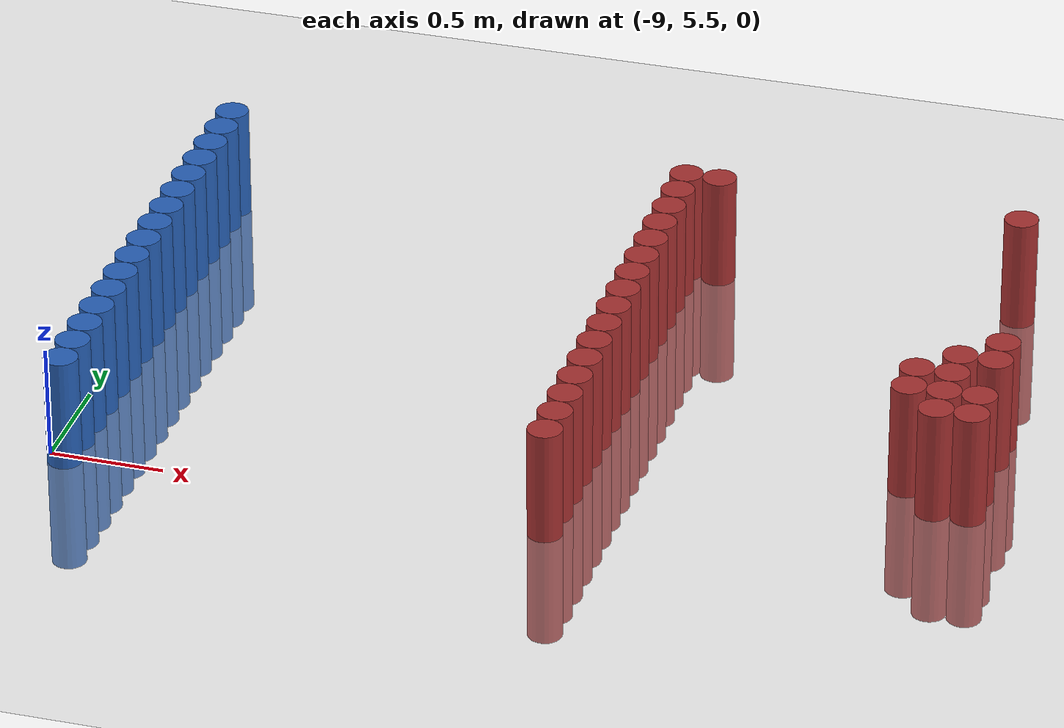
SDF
<sdf version="1.6">
 <world name="default">
  <model name="ground_plane">
   <static>1</static>
   <link name="link">
    <collision name="collision">
     <geometry><plane><normal>0 0 1</normal><size>100 100</size></plane></geometry>
     <surface><friction><ode><mu>100</mu><mu2>50</mu2></ode></friction></surface>
    </collision>
    <visual name="visual">
     <cast_shadows>0</cast_shadows>
     <geometry><plane><normal>0 0 1</normal><size>100 100</size></plane></geometry>
     <material>
      <script><uri>file://media/materials/scripts/gazebo.material</uri><name>Gazebo/Grey</name></script>
     </material>
    </visual>
   </link>
  </model>
  <model name="unit_cylinder_127">
   <static>1</static>
   <pose>-8.925000 5.475000 0.000000 0.000000 0.000000 0.000000</pose>
   <link name="link">
    <inertial>
     <mass>1</mass>
     <inertia><ixx>0.145833</ixx><ixy>0</ixy><ixz>0</ixz><iyy>0.145833</iyy><iyz>0</iyz><izz>0.125</izz></inertia>
    </inertial>
    <collision name="collision">
     <geometry><cylinder><radius>0.075000</radius><length>1</length></cylinder></geometry>
    </collision>
    <visual name="visual">
     <geometry><cylinder><radius>0.075000</radius><length>1</length></cylinder></geometry>
     <material>
      <ambient>0.152000 0.379000 0.720000 1</ambient>
      <diffuse>0.152000 0.379000 0.720000 1</diffuse>
     </material>
     <material>
      <script><name>Gazebo/Grey</name><uri>file://media/materials/scripts/gazebo.material</uri></script>
     </material>
    </visual>
   </link>
  </model>
  <model name="unit_cylinder_128">
   <static>1</static>
   <pose>-8.925000 5.625000 0.000000 0.000000 0.000000 0.000000</pose>
   <link name="link">
    <inertial>
     <mass>1</mass>
     <inertia><ixx>0.145833</ixx><ixy>0</ixy><ixz>0</ixz><iyy>0.145833</iyy><iyz>0</iyz><izz>0.125</izz></inertia>
    </inertial>
    <collision name="collision">
     <geometry><cylinder><radius>0.075000</radius><length>1</length></cylinder></geometry>
    </collision>
    <visual name="visual">
     <geometry><cylinder><radius>0.075000</radius><length>1</length></cylinder></geometry>
     <material>
      <ambient>0.152000 0.379000 0.720000 1</ambient>
      <diffuse>0.152000 0.379000 0.720000 1</diffuse>
     </material>
     <material>
      <script><name>Gazebo/Grey</name><uri>file://media/materials/scripts/gazebo.material</uri></script>
     </material>
    </visual>
   </link>
  </model>
  <model name="unit_cylinder_129">
   <static>1</static>
   <pose>-8.925000 5.775000 0.000000 0.000000 0.000000 0.000000</pose>
   <link name="link">
    <inertial>
     <mass>1</mass>
     <inertia><ixx>0.145833</ixx><ixy>0</ixy><ixz>0</ixz><iyy>0.145833</iyy><iyz>0</iyz><izz>0.125</izz></inertia>
    </inertial>
    <collision name="collision">
     <geometry><cylinder><radius>0.075000</radius><length>1</length></cylinder></geometry>
    </collision>
    <visual name="visual">
     <geometry><cylinder><radius>0.075000</radius><length>1</length></cylinder></geometry>
     <material>
      <ambient>0.152000 0.379000 0.720000 1</ambient>
      <diffuse>0.152000 0.379000 0.720000 1</diffuse>
     </material>
     <material>
      <script><name>Gazebo/Grey</name><uri>file://media/materials/scripts/gazebo.material</uri></script>
     </material>
    </visual>
   </link>
  </model>
  <model name="unit_cylinder_130">
   <static>1</static>
   <pose>-8.925000 5.925000 0.000000 0.000000 0.000000 0.000000</pose>
   <link name="link">
    <inertial>
     <mass>1</mass>
     <inertia><ixx>0.145833</ixx><ixy>0</ixy><ixz>0</ixz><iyy>0.145833</iyy><iyz>0</iyz><izz>0.125</izz></inertia>
    </inertial>
    <collision name="collision">
     <geometry><cylinder><radius>0.075000</radius><length>1</length></cylinder></geometry>
    </collision>
    <visual name="visual">
     <geometry><cylinder><radius>0.075000</radius><length>1</length></cylinder></geometry>
     <material>
      <ambient>0.152000 0.379000 0.720000 1</ambient>
      <diffuse>0.152000 0.379000 0.720000 1</diffuse>
     </material>
     <material>
      <script><name>Gazebo/Grey</name><uri>file://media/materials/scripts/gazebo.material</uri></script>
     </material>
    </visual>
   </link>
  </model>
  <model name="unit_cylinder_131">
   <static>1</static>
   <pose>-8.925000 6.075000 0.000000 0.000000 0.000000 0.000000</pose>
   <link name="link">
    <inertial>
     <mass>1</mass>
     <inertia><ixx>0.145833</ixx><ixy>0</ixy><ixz>0</ixz><iyy>0.145833</iyy><iyz>0</iyz><izz>0.125</izz></inertia>
    </inertial>
    <collision name="collision">
     <geometry><cylinder><radius>0.075000</radius><length>1</length></cylinder></geometry>
    </collision>
    <visual name="visual">
     <geometry><cylinder><radius>0.075000</radius><length>1</length></cylinder></geometry>
     <material>
      <ambient>0.152000 0.379000 0.720000 1</ambient>
      <diffuse>0.152000 0.379000 0.720000 1</diffuse>
     </material>
     <material>
      <script><name>Gazebo/Grey</name><uri>file://media/materials/scripts/gazebo.material</uri></script>
     </material>
    </visual>
   </link>
  </model>
  <model name="unit_cylinder_132">
   <static>1</static>
   <pose>-8.925000 6.225000 0.000000 0.000000 0.000000 0.000000</pose>
   <link name="link">
    <inertial>
     <mass>1</mass>
     <inertia><ixx>0.145833</ixx><ixy>0</ixy><ixz>0</ixz><iyy>0.145833</iyy><iyz>0</iyz><izz>0.125</izz></inertia>
    </inertial>
    <collision name="collision">
     <geometry><cylinder><radius>0.075000</radius><length>1</length></cylinder></geometry>
    </collision>
    <visual name="visual">
     <geometry><cylinder><radius>0.075000</radius><length>1</length></cylinder></geometry>
     <material>
      <ambient>0.152000 0.379000 0.720000 1</ambient>
      <diffuse>0.152000 0.379000 0.720000 1</diffuse>
     </material>
     <material>
      <script><name>Gazebo/Grey</name><uri>file://media/materials/scripts/gazebo.material</uri></script>
     </material>
    </visual>
   </link>
  </model>
  <model name="unit_cylinder_133">
   <static>1</static>
   <pose>-8.925000 6.375000 0.000000 0.000000 0.000000 0.000000</pose>
   <link name="link">
    <inertial>
     <mass>1</mass>
     <inertia><ixx>0.145833</ixx><ixy>0</ixy><ixz>0</ixz><iyy>0.145833</iyy><iyz>0</iyz><izz>0.125</izz></inertia>
    </inertial>
    <collision name="collision">
     <geometry><cylinder><radius>0.075000</radius><length>1</length></cylinder></geometry>
    </collision>
    <visual name="visual">
     <geometry><cylinder><radius>0.075000</radius><length>1</length></cylinder></geometry>
     <material>
      <ambient>0.152000 0.379000 0.720000 1</ambient>
      <diffuse>0.152000 0.379000 0.720000 1</diffuse>
     </material>
     <material>
      <script><name>Gazebo/Grey</name><uri>file://media/materials/scripts/gazebo.material</uri></script>
     </material>
    </visual>
   </link>
  </model>
  <model name="unit_cylinder_134">
   <static>1</static>
   <pose>-8.925000 6.525000 0.000000 0.000000 0.000000 0.000000</pose>
   <link name="link">
    <inertial>
     <mass>1</mass>
     <inertia><ixx>0.145833</ixx><ixy>0</ixy><ixz>0</ixz><iyy>0.145833</iyy><iyz>0</iyz><izz>0.125</izz></inertia>
    </inertial>
    <collision name="collision">
     <geometry><cylinder><radius>0.075000</radius><length>1</length></cylinder></geometry>
    </collision>
    <visual name="visual">
     <geometry><cylinder><radius>0.075000</radius><length>1</length></cylinder></geometry>
     <material>
      <ambient>0.152000 0.379000 0.720000 1</ambient>
      <diffuse>0.152000 0.379000 0.720000 1</diffuse>
     </material>
     <material>
      <script><name>Gazebo/Grey</name><uri>file://media/materials/scripts/gazebo.material</uri></script>
     </material>
    </visual>
   </link>
  </model>
  <model name="unit_cylinder_135">
   <static>1</static>
   <pose>-8.925000 6.675000 0.000000 0.000000 0.000000 0.000000</pose>
   <link name="link">
    <inertial>
     <mass>1</mass>
     <inertia><ixx>0.145833</ixx><ixy>0</ixy><ixz>0</ixz><iyy>0.145833</iyy><iyz>0</iyz><izz>0.125</izz></inertia>
    </inertial>
    <collision name="collision">
     <geometry><cylinder><radius>0.075000</radius><length>1</length></cylinder></geometry>
    </collision>
    <visual name="visual">
     <geometry><cylinder><radius>0.075000</radius><length>1</length></cylinder></geometry>
     <material>
      <ambient>0.152000 0.379000 0.720000 1</ambient>
      <diffuse>0.152000 0.379000 0.720000 1</diffuse>
     </material>
     <material>
      <script><name>Gazebo/Grey</name><uri>file://media/materials/scripts/gazebo.material</uri></script>
     </material>
    </visual>
   </link>
  </model>
  <model name="unit_cylinder_136">
   <static>1</static>
   <pose>-8.925000 6.825000 0.000000 0.000000 0.000000 0.000000</pose>
   <link name="link">
    <inertial>
     <mass>1</mass>
     <inertia><ixx>0.145833</ixx><ixy>0</ixy><ixz>0</ixz><iyy>0.145833</iyy><iyz>0</iyz><izz>0.125</izz></inertia>
    </inertial>
    <collision name="collision">
     <geometry><cylinder><radius>0.075000</radius><length>1</length></cylinder></geometry>
    </collision>
    <visual name="visual">
     <geometry><cylinder><radius>0.075000</radius><length>1</length></cylinder></geometry>
     <material>
      <ambient>0.152000 0.379000 0.720000 1</ambient>
      <diffuse>0.152000 0.379000 0.720000 1</diffuse>
     </material>
     <material>
      <script><name>Gazebo/Grey</name><uri>file://media/materials/scripts/gazebo.material</uri></script>
     </material>
    </visual>
   </link>
  </model>
  <model name="unit_cylinder_137">
   <static>1</static>
   <pose>-8.925000 6.975000 0.000000 0.000000 0.000000 0.000000</pose>
   <link name="link">
    <inertial>
     <mass>1</mass>
     <inertia><ixx>0.145833</ixx><ixy>0</ixy><ixz>0</ixz><iyy>0.145833</iyy><iyz>0</iyz><izz>0.125</izz></inertia>
    </inertial>
    <collision name="collision">
     <geometry><cylinder><radius>0.075000</radius><length>1</length></cylinder></geometry>
    </collision>
    <visual name="visual">
     <geometry><cylinder><radius>0.075000</radius><length>1</length></cylinder></geometry>
     <material>
      <ambient>0.152000 0.379000 0.720000 1</ambient>
      <diffuse>0.152000 0.379000 0.720000 1</diffuse>
     </material>
     <material>
      <script><name>Gazebo/Grey</name><uri>file://media/materials/scripts/gazebo.material</uri></script>
     </material>
    </visual>
   </link>
  </model>
  <model name="unit_cylinder_138">
   <static>1</static>
   <pose>-8.925000 7.125000 0.000000 0.000000 0.000000 0.000000</pose>
   <link name="link">
    <inertial>
     <mass>1</mass>
     <inertia><ixx>0.145833</ixx><ixy>0</ixy><ixz>0</ixz><iyy>0.145833</iyy><iyz>0</iyz><izz>0.125</izz></inertia>
    </inertial>
    <collision name="collision">
     <geometry><cylinder><radius>0.075000</radius><length>1</length></cylinder></geometry>
    </collision>
    <visual name="visual">
     <geometry><cylinder><radius>0.075000</radius><length>1</length></cylinder></geometry>
     <material>
      <ambient>0.152000 0.379000 0.720000 1</ambient>
      <diffuse>0.152000 0.379000 0.720000 1</diffuse>
     </material>
     <material>
      <script><name>Gazebo/Grey</name><uri>file://media/materials/scripts/gazebo.material</uri></script>
     </material>
    </visual>
   </link>
  </model>
  <model name="unit_cylinder_139">
   <static>1</static>
   <pose>-8.925000 7.275000 0.000000 0.000000 0.000000 0.000000</pose>
   <link name="link">
    <inertial>
     <mass>1</mass>
     <inertia><ixx>0.145833</ixx><ixy>0</ixy><ixz>0</ixz><iyy>0.145833</iyy><iyz>0</iyz><izz>0.125</izz></inertia>
    </inertial>
    <collision name="collision">
     <geometry><cylinder><radius>0.075000</radius><length>1</length></cylinder></geometry>
    </collision>
    <visual name="visual">
     <geometry><cylinder><radius>0.075000</radius><length>1</length></cylinder></geometry>
     <material>
      <ambient>0.152000 0.379000 0.720000 1</ambient>
      <diffuse>0.152000 0.379000 0.720000 1</diffuse>
     </material>
     <material>
      <script><name>Gazebo/Grey</name><uri>file://media/materials/scripts/gazebo.material</uri></script>
     </material>
    </visual>
   </link>
  </model>
  <model name="unit_cylinder_140">
   <static>1</static>
   <pose>-8.925000 7.425000 0.000000 0.000000 0.000000 0.000000</pose>
   <link name="link">
    <inertial>
     <mass>1</mass>
     <inertia><ixx>0.145833</ixx><ixy>0</ixy><ixz>0</ixz><iyy>0.145833</iyy><iyz>0</iyz><izz>0.125</izz></inertia>
    </inertial>
    <collision name="collision">
     <geometry><cylinder><radius>0.075000</radius><length>1</length></cylinder></geometry>
    </collision>
    <visual name="visual">
     <geometry><cylinder><radius>0.075000</radius><length>1</length></cylinder></geometry>
     <material>
      <ambient>0.152000 0.379000 0.720000 1</ambient>
      <diffuse>0.152000 0.379000 0.720000 1</diffuse>
     </material>
     <material>
      <script><name>Gazebo/Grey</name><uri>file://media/materials/scripts/gazebo.material</uri></script>
     </material>
    </visual>
   </link>
  </model>
  <model name="unit_cylinder_141">
   <static>1</static>
   <pose>-8.925000 7.575000 0.000000 0.000000 0.000000 0.000000</pose>
   <link name="link">
    <inertial>
     <mass>1</mass>
     <inertia><ixx>0.145833</ixx><ixy>0</ixy><ixz>0</ixz><iyy>0.145833</iyy><iyz>0</iyz><izz>0.125</izz></inertia>
    </inertial>
    <collision name="collision">
     <geometry><cylinder><radius>0.075000</radius><length>1</length></cylinder></geometry>
    </collision>
    <visual name="visual">
     <geometry><cylinder><radius>0.075000</radius><length>1</length></cylinder></geometry>
     <material>
      <ambient>0.152000 0.379000 0.720000 1</ambient>
      <diffuse>0.152000 0.379000 0.720000 1</diffuse>
     </material>
     <material>
      <script><name>Gazebo/Grey</name><uri>file://media/materials/scripts/gazebo.material</uri></script>
     </material>
    </visual>
   </link>
  </model>
  <model name="unit_cylinder_142">
   <static>1</static>
   <pose>-8.925000 7.725000 0.000000 0.000000 0.000000 0.000000</pose>
   <link name="link">
    <inertial>
     <mass>1</mass>
     <inertia><ixx>0.145833</ixx><ixy>0</ixy><ixz>0</ixz><iyy>0.145833</iyy><iyz>0</iyz><izz>0.125</izz></inertia>
    </inertial>
    <collision name="collision">
     <geometry><cylinder><radius>0.075000</radius><length>1</length></cylinder></geometry>
    </collision>
    <visual name="visual">
     <geometry><cylinder><radius>0.075000</radius><length>1</length></cylinder></geometry>
     <material>
      <ambient>0.152000 0.379000 0.720000 1</ambient>
      <diffuse>0.152000 0.379000 0.720000 1</diffuse>
     </material>
     <material>
      <script><name>Gazebo/Grey</name><uri>file://media/materials/scripts/gazebo.material</uri></script>
     </material>
    </visual>
   </link>
  </model>
  <model name="unit_cylinder_183">
   <static>1</static>
   <pose>-6.825000 5.475000 0.000000 0.000000 0.000000 0.000000</pose>
   <link name="link">
    <inertial>
     <mass>1</mass>
     <inertia><ixx>0.145833</ixx><ixy>0</ixy><ixz>0</ixz><iyy>0.145833</iyy><iyz>0</iyz><izz>0.125</izz></inertia>
    </inertial>
    <collision name="collision">
     <geometry><cylinder><radius>0.075000</radius><length>1</length></cylinder></geometry>
    </collision>
    <visual name="visual">
     <geometry><cylinder><radius>0.075000</radius><length>1</length></cylinder></geometry>
     <material>
      <ambient>0.648000 0.192000 0.192000 1</ambient>
      <diffuse>0.648000 0.192000 0.192000 1</diffuse>
     </material>
     <material>
      <script><name>Gazebo/Grey</name><uri>file://media/materials/scripts/gazebo.material</uri></script>
     </material>
    </visual>
   </link>
  </model>
  <model name="unit_cylinder_184">
   <static>1</static>
   <pose>-6.825000 5.625000 0.000000 0.000000 0.000000 0.000000</pose>
   <link name="link">
    <inertial>
     <mass>1</mass>
     <inertia><ixx>0.145833</ixx><ixy>0</ixy><ixz>0</ixz><iyy>0.145833</iyy><iyz>0</iyz><izz>0.125</izz></inertia>
    </inertial>
    <collision name="collision">
     <geometry><cylinder><radius>0.075000</radius><length>1</length></cylinder></geometry>
    </collision>
    <visual name="visual">
     <geometry><cylinder><radius>0.075000</radius><length>1</length></cylinder></geometry>
     <material>
      <ambient>0.648000 0.192000 0.192000 1</ambient>
      <diffuse>0.648000 0.192000 0.192000 1</diffuse>
     </material>
     <material>
      <script><name>Gazebo/Grey</name><uri>file://media/materials/scripts/gazebo.material</uri></script>
     </material>
    </visual>
   </link>
  </model>
  <model name="unit_cylinder_185">
   <static>1</static>
   <pose>-6.825000 5.775000 0.000000 0.000000 0.000000 0.000000</pose>
   <link name="link">
    <inertial>
     <mass>1</mass>
     <inertia><ixx>0.145833</ixx><ixy>0</ixy><ixz>0</ixz><iyy>0.145833</iyy><iyz>0</iyz><izz>0.125</izz></inertia>
    </inertial>
    <collision name="collision">
     <geometry><cylinder><radius>0.075000</radius><length>1</length></cylinder></geometry>
    </collision>
    <visual name="visual">
     <geometry><cylinder><radius>0.075000</radius><length>1</length></cylinder></geometry>
     <material>
      <ambient>0.648000 0.192000 0.192000 1</ambient>
      <diffuse>0.648000 0.192000 0.192000 1</diffuse>
     </material>
     <material>
      <script><name>Gazebo/Grey</name><uri>file://media/materials/scripts/gazebo.material</uri></script>
     </material>
    </visual>
   </link>
  </model>
  <model name="unit_cylinder_186">
   <static>1</static>
   <pose>-6.825000 5.925000 0.000000 0.000000 0.000000 0.000000</pose>
   <link name="link">
    <inertial>
     <mass>1</mass>
     <inertia><ixx>0.145833</ixx><ixy>0</ixy><ixz>0</ixz><iyy>0.145833</iyy><iyz>0</iyz><izz>0.125</izz></inertia>
    </inertial>
    <collision name="collision">
     <geometry><cylinder><radius>0.075000</radius><length>1</length></cylinder></geometry>
    </collision>
    <visual name="visual">
     <geometry><cylinder><radius>0.075000</radius><length>1</length></cylinder></geometry>
     <material>
      <ambient>0.648000 0.192000 0.192000 1</ambient>
      <diffuse>0.648000 0.192000 0.192000 1</diffuse>
     </material>
     <material>
      <script><name>Gazebo/Grey</name><uri>file://media/materials/scripts/gazebo.material</uri></script>
     </material>
    </visual>
   </link>
  </model>
  <model name="unit_cylinder_187">
   <static>1</static>
   <pose>-6.825000 6.075000 0.000000 0.000000 0.000000 0.000000</pose>
   <link name="link">
    <inertial>
     <mass>1</mass>
     <inertia><ixx>0.145833</ixx><ixy>0</ixy><ixz>0</ixz><iyy>0.145833</iyy><iyz>0</iyz><izz>0.125</izz></inertia>
    </inertial>
    <collision name="collision">
     <geometry><cylinder><radius>0.075000</radius><length>1</length></cylinder></geometry>
    </collision>
    <visual name="visual">
     <geometry><cylinder><radius>0.075000</radius><length>1</length></cylinder></geometry>
     <material>
      <ambient>0.648000 0.192000 0.192000 1</ambient>
      <diffuse>0.648000 0.192000 0.192000 1</diffuse>
     </material>
     <material>
      <script><name>Gazebo/Grey</name><uri>file://media/materials/scripts/gazebo.material</uri></script>
     </material>
    </visual>
   </link>
  </model>
  <model name="unit_cylinder_188">
   <static>1</static>
   <pose>-6.825000 6.225000 0.000000 0.000000 0.000000 0.000000</pose>
   <link name="link">
    <inertial>
     <mass>1</mass>
     <inertia><ixx>0.145833</ixx><ixy>0</ixy><ixz>0</ixz><iyy>0.145833</iyy><iyz>0</iyz><izz>0.125</izz></inertia>
    </inertial>
    <collision name="collision">
     <geometry><cylinder><radius>0.075000</radius><length>1</length></cylinder></geometry>
    </collision>
    <visual name="visual">
     <geometry><cylinder><radius>0.075000</radius><length>1</length></cylinder></geometry>
     <material>
      <ambient>0.648000 0.192000 0.192000 1</ambient>
      <diffuse>0.648000 0.192000 0.192000 1</diffuse>
     </material>
     <material>
      <script><name>Gazebo/Grey</name><uri>file://media/materials/scripts/gazebo.material</uri></script>
     </material>
    </visual>
   </link>
  </model>
  <model name="unit_cylinder_189">
   <static>1</static>
   <pose>-6.825000 6.375000 0.000000 0.000000 0.000000 0.000000</pose>
   <link name="link">
    <inertial>
     <mass>1</mass>
     <inertia><ixx>0.145833</ixx><ixy>0</ixy><ixz>0</ixz><iyy>0.145833</iyy><iyz>0</iyz><izz>0.125</izz></inertia>
    </inertial>
    <collision name="collision">
     <geometry><cylinder><radius>0.075000</radius><length>1</length></cylinder></geometry>
    </collision>
    <visual name="visual">
     <geometry><cylinder><radius>0.075000</radius><length>1</length></cylinder></geometry>
     <material>
      <ambient>0.648000 0.192000 0.192000 1</ambient>
      <diffuse>0.648000 0.192000 0.192000 1</diffuse>
     </material>
     <material>
      <script><name>Gazebo/Grey</name><uri>file://media/materials/scripts/gazebo.material</uri></script>
     </material>
    </visual>
   </link>
  </model>
  <model name="unit_cylinder_190">
   <static>1</static>
   <pose>-6.825000 6.525000 0.000000 0.000000 0.000000 0.000000</pose>
   <link name="link">
    <inertial>
     <mass>1</mass>
     <inertia><ixx>0.145833</ixx><ixy>0</ixy><ixz>0</ixz><iyy>0.145833</iyy><iyz>0</iyz><izz>0.125</izz></inertia>
    </inertial>
    <collision name="collision">
     <geometry><cylinder><radius>0.075000</radius><length>1</length></cylinder></geometry>
    </collision>
    <visual name="visual">
     <geometry><cylinder><radius>0.075000</radius><length>1</length></cylinder></geometry>
     <material>
      <ambient>0.648000 0.192000 0.192000 1</ambient>
      <diffuse>0.648000 0.192000 0.192000 1</diffuse>
     </material>
     <material>
      <script><name>Gazebo/Grey</name><uri>file://media/materials/scripts/gazebo.material</uri></script>
     </material>
    </visual>
   </link>
  </model>
  <model name="unit_cylinder_191">
   <static>1</static>
   <pose>-6.825000 6.675000 0.000000 0.000000 0.000000 0.000000</pose>
   <link name="link">
    <inertial>
     <mass>1</mass>
     <inertia><ixx>0.145833</ixx><ixy>0</ixy><ixz>0</ixz><iyy>0.145833</iyy><iyz>0</iyz><izz>0.125</izz></inertia>
    </inertial>
    <collision name="collision">
     <geometry><cylinder><radius>0.075000</radius><length>1</length></cylinder></geometry>
    </collision>
    <visual name="visual">
     <geometry><cylinder><radius>0.075000</radius><length>1</length></cylinder></geometry>
     <material>
      <ambient>0.648000 0.192000 0.192000 1</ambient>
      <diffuse>0.648000 0.192000 0.192000 1</diffuse>
     </material>
     <material>
      <script><name>Gazebo/Grey</name><uri>file://media/materials/scripts/gazebo.material</uri></script>
     </material>
    </visual>
   </link>
  </model>
  <model name="unit_cylinder_192">
   <static>1</static>
   <pose>-6.825000 6.825000 0.000000 0.000000 0.000000 0.000000</pose>
   <link name="link">
    <inertial>
     <mass>1</mass>
     <inertia><ixx>0.145833</ixx><ixy>0</ixy><ixz>0</ixz><iyy>0.145833</iyy><iyz>0</iyz><izz>0.125</izz></inertia>
    </inertial>
    <collision name="collision">
     <geometry><cylinder><radius>0.075000</radius><length>1</length></cylinder></geometry>
    </collision>
    <visual name="visual">
     <geometry><cylinder><radius>0.075000</radius><length>1</length></cylinder></geometry>
     <material>
      <ambient>0.648000 0.192000 0.192000 1</ambient>
      <diffuse>0.648000 0.192000 0.192000 1</diffuse>
     </material>
     <material>
      <script><name>Gazebo/Grey</name><uri>file://media/materials/scripts/gazebo.material</uri></script>
     </material>
    </visual>
   </link>
  </model>
  <model name="unit_cylinder_193">
   <static>1</static>
   <pose>-6.825000 6.975000 0.000000 0.000000 0.000000 0.000000</pose>
   <link name="link">
    <inertial>
     <mass>1</mass>
     <inertia><ixx>0.145833</ixx><ixy>0</ixy><ixz>0</ixz><iyy>0.145833</iyy><iyz>0</iyz><izz>0.125</izz></inertia>
    </inertial>
    <collision name="collision">
     <geometry><cylinder><radius>0.075000</radius><length>1</length></cylinder></geometry>
    </collision>
    <visual name="visual">
     <geometry><cylinder><radius>0.075000</radius><length>1</length></cylinder></geometry>
     <material>
      <ambient>0.648000 0.192000 0.192000 1</ambient>
      <diffuse>0.648000 0.192000 0.192000 1</diffuse>
     </material>
     <material>
      <script><name>Gazebo/Grey</name><uri>file://media/materials/scripts/gazebo.material</uri></script>
     </material>
    </visual>
   </link>
  </model>
  <model name="unit_cylinder_194">
   <static>1</static>
   <pose>-6.825000 7.125000 0.000000 0.000000 0.000000 0.000000</pose>
   <link name="link">
    <inertial>
     <mass>1</mass>
     <inertia><ixx>0.145833</ixx><ixy>0</ixy><ixz>0</ixz><iyy>0.145833</iyy><iyz>0</iyz><izz>0.125</izz></inertia>
    </inertial>
    <collision name="collision">
     <geometry><cylinder><radius>0.075000</radius><length>1</length></cylinder></geometry>
    </collision>
    <visual name="visual">
     <geometry><cylinder><radius>0.075000</radius><length>1</length></cylinder></geometry>
     <material>
      <ambient>0.648000 0.192000 0.192000 1</ambient>
      <diffuse>0.648000 0.192000 0.192000 1</diffuse>
     </material>
     <material>
      <script><name>Gazebo/Grey</name><uri>file://media/materials/scripts/gazebo.material</uri></script>
     </material>
    </visual>
   </link>
  </model>
  <model name="unit_cylinder_195">
   <static>1</static>
   <pose>-6.825000 7.275000 0.000000 0.000000 0.000000 0.000000</pose>
   <link name="link">
    <inertial>
     <mass>1</mass>
     <inertia><ixx>0.145833</ixx><ixy>0</ixy><ixz>0</ixz><iyy>0.145833</iyy><iyz>0</iyz><izz>0.125</izz></inertia>
    </inertial>
    <collision name="collision">
     <geometry><cylinder><radius>0.075000</radius><length>1</length></cylinder></geometry>
    </collision>
    <visual name="visual">
     <geometry><cylinder><radius>0.075000</radius><length>1</length></cylinder></geometry>
     <material>
      <ambient>0.648000 0.192000 0.192000 1</ambient>
      <diffuse>0.648000 0.192000 0.192000 1</diffuse>
     </material>
     <material>
      <script><name>Gazebo/Grey</name><uri>file://media/materials/scripts/gazebo.material</uri></script>
     </material>
    </visual>
   </link>
  </model>
  <model name="unit_cylinder_196">
   <static>1</static>
   <pose>-6.825000 7.425000 0.000000 0.000000 0.000000 0.000000</pose>
   <link name="link">
    <inertial>
     <mass>1</mass>
     <inertia><ixx>0.145833</ixx><ixy>0</ixy><ixz>0</ixz><iyy>0.145833</iyy><iyz>0</iyz><izz>0.125</izz></inertia>
    </inertial>
    <collision name="collision">
     <geometry><cylinder><radius>0.075000</radius><length>1</length></cylinder></geometry>
    </collision>
    <visual name="visual">
     <geometry><cylinder><radius>0.075000</radius><length>1</length></cylinder></geometry>
     <material>
      <ambient>0.648000 0.192000 0.192000 1</ambient>
      <diffuse>0.648000 0.192000 0.192000 1</diffuse>
     </material>
     <material>
      <script><name>Gazebo/Grey</name><uri>file://media/materials/scripts/gazebo.material</uri></script>
     </material>
    </visual>
   </link>
  </model>
  <model name="unit_cylinder_197">
   <static>1</static>
   <pose>-6.825000 7.575000 0.000000 0.000000 0.000000 0.000000</pose>
   <link name="link">
    <inertial>
     <mass>1</mass>
     <inertia><ixx>0.145833</ixx><ixy>0</ixy><ixz>0</ixz><iyy>0.145833</iyy><iyz>0</iyz><izz>0.125</izz></inertia>
    </inertial>
    <collision name="collision">
     <geometry><cylinder><radius>0.075000</radius><length>1</length></cylinder></geometry>
    </collision>
    <visual name="visual">
     <geometry><cylinder><radius>0.075000</radius><length>1</length></cylinder></geometry>
     <material>
      <ambient>0.648000 0.192000 0.192000 1</ambient>
      <diffuse>0.648000 0.192000 0.192000 1</diffuse>
     </material>
     <material>
      <script><name>Gazebo/Grey</name><uri>file://media/materials/scripts/gazebo.material</uri></script>
     </material>
    </visual>
   </link>
  </model>
  <model name="unit_cylinder_198">
   <static>1</static>
   <pose>-6.825000 7.725000 0.000000 0.000000 0.000000 0.000000</pose>
   <link name="link">
    <inertial>
     <mass>1</mass>
     <inertia><ixx>0.145833</ixx><ixy>0</ixy><ixz>0</ixz><iyy>0.145833</iyy><iyz>0</iyz><izz>0.125</izz></inertia>
    </inertial>
    <collision name="collision">
     <geometry><cylinder><radius>0.075000</radius><length>1</length></cylinder></geometry>
    </collision>
    <visual name="visual">
     <geometry><cylinder><radius>0.075000</radius><length>1</length></cylinder></geometry>
     <material>
      <ambient>0.648000 0.192000 0.192000 1</ambient>
      <diffuse>0.648000 0.192000 0.192000 1</diffuse>
     </material>
     <material>
      <script><name>Gazebo/Grey</name><uri>file://media/materials/scripts/gazebo.material</uri></script>
     </material>
    </visual>
   </link>
  </model>
  <model name="unit_cylinder_200">
   <static>1</static>
   <pose>-6.675000 7.725000 0.000000 0.000000 0.000000 0.000000</pose>
   <link name="link">
    <inertial>
     <mass>1</mass>
     <inertia><ixx>0.145833</ixx><ixy>0</ixy><ixz>0</ixz><iyy>0.145833</iyy><iyz>0</iyz><izz>0.125</izz></inertia>
    </inertial>
    <collision name="collision">
     <geometry><cylinder><radius>0.075000</radius><length>1</length></cylinder></geometry>
    </collision>
    <visual name="visual">
     <geometry><cylinder><radius>0.075000</radius><length>1</length></cylinder></geometry>
     <material>
      <ambient>0.648000 0.192000 0.192000 1</ambient>
      <diffuse>0.648000 0.192000 0.192000 1</diffuse>
     </material>
     <material>
      <script><name>Gazebo/Grey</name><uri>file://media/materials/scripts/gazebo.material</uri></script>
     </material>
    </visual>
   </link>
  </model>
  <model name="unit_cylinder_213">
   <static>1</static>
   <pose>-5.475000 6.225000 0.000000 0.000000 0.000000 0.000000</pose>
   <link name="link">
    <inertial>
     <mass>1</mass>
     <inertia><ixx>0.145833</ixx><ixy>0</ixy><ixz>0</ixz><iyy>0.145833</iyy><iyz>0</iyz><izz>0.125</izz></inertia>
    </inertial>
    <collision name="collision">
     <geometry><cylinder><radius>0.075000</radius><length>1</length></cylinder></geometry>
    </collision>
    <visual name="visual">
     <geometry><cylinder><radius>0.075000</radius><length>1</length></cylinder></geometry>
     <material>
      <ambient>0.648000 0.192000 0.192000 1</ambient>
      <diffuse>0.648000 0.192000 0.192000 1</diffuse>
     </material>
     <material>
      <script><name>Gazebo/Grey</name><uri>file://media/materials/scripts/gazebo.material</uri></script>
     </material>
    </visual>
   </link>
  </model>
  <model name="unit_cylinder_214">
   <static>1</static>
   <pose>-5.475000 6.375000 0.000000 0.000000 0.000000 0.000000</pose>
   <link name="link">
    <inertial>
     <mass>1</mass>
     <inertia><ixx>0.145833</ixx><ixy>0</ixy><ixz>0</ixz><iyy>0.145833</iyy><iyz>0</iyz><izz>0.125</izz></inertia>
    </inertial>
    <collision name="collision">
     <geometry><cylinder><radius>0.075000</radius><length>1</length></cylinder></geometry>
    </collision>
    <visual name="visual">
     <geometry><cylinder><radius>0.075000</radius><length>1</length></cylinder></geometry>
     <material>
      <ambient>0.648000 0.192000 0.192000 1</ambient>
      <diffuse>0.648000 0.192000 0.192000 1</diffuse>
     </material>
     <material>
      <script><name>Gazebo/Grey</name><uri>file://media/materials/scripts/gazebo.material</uri></script>
     </material>
    </visual>
   </link>
  </model>
  <model name="unit_cylinder_215">
   <static>1</static>
   <pose>-5.325000 6.075000 0.000000 0.000000 0.000000 0.000000</pose>
   <link name="link">
    <inertial>
     <mass>1</mass>
     <inertia><ixx>0.145833</ixx><ixy>0</ixy><ixz>0</ixz><iyy>0.145833</iyy><iyz>0</iyz><izz>0.125</izz></inertia>
    </inertial>
    <collision name="collision">
     <geometry><cylinder><radius>0.075000</radius><length>1</length></cylinder></geometry>
    </collision>
    <visual name="visual">
     <geometry><cylinder><radius>0.075000</radius><length>1</length></cylinder></geometry>
     <material>
      <ambient>0.648000 0.192000 0.192000 1</ambient>
      <diffuse>0.648000 0.192000 0.192000 1</diffuse>
     </material>
     <material>
      <script><name>Gazebo/Grey</name><uri>file://media/materials/scripts/gazebo.material</uri></script>
     </material>
    </visual>
   </link>
  </model>
  <model name="unit_cylinder_216">
   <static>1</static>
   <pose>-5.325000 6.225000 0.000000 0.000000 0.000000 0.000000</pose>
   <link name="link">
    <inertial>
     <mass>1</mass>
     <inertia><ixx>0.145833</ixx><ixy>0</ixy><ixz>0</ixz><iyy>0.145833</iyy><iyz>0</iyz><izz>0.125</izz></inertia>
    </inertial>
    <collision name="collision">
     <geometry><cylinder><radius>0.075000</radius><length>1</length></cylinder></geometry>
    </collision>
    <visual name="visual">
     <geometry><cylinder><radius>0.075000</radius><length>1</length></cylinder></geometry>
     <material>
      <ambient>0.648000 0.192000 0.192000 1</ambient>
      <diffuse>0.648000 0.192000 0.192000 1</diffuse>
     </material>
     <material>
      <script><name>Gazebo/Grey</name><uri>file://media/materials/scripts/gazebo.material</uri></script>
     </material>
    </visual>
   </link>
  </model>
  <model name="unit_cylinder_217">
   <static>1</static>
   <pose>-5.325000 6.375000 0.000000 0.000000 0.000000 0.000000</pose>
   <link name="link">
    <inertial>
     <mass>1</mass>
     <inertia><ixx>0.145833</ixx><ixy>0</ixy><ixz>0</ixz><iyy>0.145833</iyy><iyz>0</iyz><izz>0.125</izz></inertia>
    </inertial>
    <collision name="collision">
     <geometry><cylinder><radius>0.075000</radius><length>1</length></cylinder></geometry>
    </collision>
    <visual name="visual">
     <geometry><cylinder><radius>0.075000</radius><length>1</length></cylinder></geometry>
     <material>
      <ambient>0.648000 0.192000 0.192000 1</ambient>
      <diffuse>0.648000 0.192000 0.192000 1</diffuse>
     </material>
     <material>
      <script><name>Gazebo/Grey</name><uri>file://media/materials/scripts/gazebo.material</uri></script>
     </material>
    </visual>
   </link>
  </model>
  <model name="unit_cylinder_218">
   <static>1</static>
   <pose>-5.325000 6.525000 0.000000 0.000000 0.000000 0.000000</pose>
   <link name="link">
    <inertial>
     <mass>1</mass>
     <inertia><ixx>0.145833</ixx><ixy>0</ixy><ixz>0</ixz><iyy>0.145833</iyy><iyz>0</iyz><izz>0.125</izz></inertia>
    </inertial>
    <collision name="collision">
     <geometry><cylinder><radius>0.075000</radius><length>1</length></cylinder></geometry>
    </collision>
    <visual name="visual">
     <geometry><cylinder><radius>0.075000</radius><length>1</length></cylinder></geometry>
     <material>
      <ambient>0.648000 0.192000 0.192000 1</ambient>
      <diffuse>0.648000 0.192000 0.192000 1</diffuse>
     </material>
     <material>
      <script><name>Gazebo/Grey</name><uri>file://media/materials/scripts/gazebo.material</uri></script>
     </material>
    </visual>
   </link>
  </model>
  <model name="unit_cylinder_219">
   <static>1</static>
   <pose>-5.325000 7.725000 0.000000 0.000000 0.000000 0.000000</pose>
   <link name="link">
    <inertial>
     <mass>1</mass>
     <inertia><ixx>0.145833</ixx><ixy>0</ixy><ixz>0</ixz><iyy>0.145833</iyy><iyz>0</iyz><izz>0.125</izz></inertia>
    </inertial>
    <collision name="collision">
     <geometry><cylinder><radius>0.075000</radius><length>1</length></cylinder></geometry>
    </collision>
    <visual name="visual">
     <geometry><cylinder><radius>0.075000</radius><length>1</length></cylinder></geometry>
     <material>
      <ambient>0.648000 0.192000 0.192000 1</ambient>
      <diffuse>0.648000 0.192000 0.192000 1</diffuse>
     </material>
     <material>
      <script><name>Gazebo/Grey</name><uri>file://media/materials/scripts/gazebo.material</uri></script>
     </material>
    </visual>
   </link>
  </model>
  <model name="unit_cylinder_223">
   <static>1</static>
   <pose>-5.175000 6.075000 0.000000 0.000000 0.000000 0.000000</pose>
   <link name="link">
    <inertial>
     <mass>1</mass>
     <inertia><ixx>0.145833</ixx><ixy>0</ixy><ixz>0</ixz><iyy>0.145833</iyy><iyz>0</iyz><izz>0.125</izz></inertia>
    </inertial>
    <collision name="collision">
     <geometry><cylinder><radius>0.075000</radius><length>1</length></cylinder></geometry>
    </collision>
    <visual name="visual">
     <geometry><cylinder><radius>0.075000</radius><length>1</length></cylinder></geometry>
     <material>
      <ambient>0.648000 0.192000 0.192000 1</ambient>
      <diffuse>0.648000 0.192000 0.192000 1</diffuse>
     </material>
     <material>
      <script><name>Gazebo/Grey</name><uri>file://media/materials/scripts/gazebo.material</uri></script>
     </material>
    </visual>
   </link>
  </model>
  <model name="unit_cylinder_224">
   <static>1</static>
   <pose>-5.175000 6.225000 0.000000 0.000000 0.000000 0.000000</pose>
   <link name="link">
    <inertial>
     <mass>1</mass>
     <inertia><ixx>0.145833</ixx><ixy>0</ixy><ixz>0</ixz><iyy>0.145833</iyy><iyz>0</iyz><izz>0.125</izz></inertia>
    </inertial>
    <collision name="collision">
     <geometry><cylinder><radius>0.075000</radius><length>1</length></cylinder></geometry>
    </collision>
    <visual name="visual">
     <geometry><cylinder><radius>0.075000</radius><length>1</length></cylinder></geometry>
     <material>
      <ambient>0.648000 0.192000 0.192000 1</ambient>
      <diffuse>0.648000 0.192000 0.192000 1</diffuse>
     </material>
     <material>
      <script><name>Gazebo/Grey</name><uri>file://media/materials/scripts/gazebo.material</uri></script>
     </material>
    </visual>
   </link>
  </model>
  <model name="unit_cylinder_225">
   <static>1</static>
   <pose>-5.175000 6.525000 0.000000 0.000000 0.000000 0.000000</pose>
   <link name="link">
    <inertial>
     <mass>1</mass>
     <inertia><ixx>0.145833</ixx><ixy>0</ixy><ixz>0</ixz><iyy>0.145833</iyy><iyz>0</iyz><izz>0.125</izz></inertia>
    </inertial>
    <collision name="collision">
     <geometry><cylinder><radius>0.075000</radius><length>1</length></cylinder></geometry>
    </collision>
    <visual name="visual">
     <geometry><cylinder><radius>0.075000</radius><length>1</length></cylinder></geometry>
     <material>
      <ambient>0.648000 0.192000 0.192000 1</ambient>
      <diffuse>0.648000 0.192000 0.192000 1</diffuse>
     </material>
     <material>
      <script><name>Gazebo/Grey</name><uri>file://media/materials/scripts/gazebo.material</uri></script>
     </material>
    </visual>
   </link>
  </model>
  <model name="unit_cylinder_226">
   <static>1</static>
   <pose>-5.175000 6.675000 0.000000 0.000000 0.000000 0.000000</pose>
   <link name="link">
    <inertial>
     <mass>1</mass>
     <inertia><ixx>0.145833</ixx><ixy>0</ixy><ixz>0</ixz><iyy>0.145833</iyy><iyz>0</iyz><izz>0.125</izz></inertia>
    </inertial>
    <collision name="collision">
     <geometry><cylinder><radius>0.075000</radius><length>1</length></cylinder></geometry>
    </collision>
    <visual name="visual">
     <geometry><cylinder><radius>0.075000</radius><length>1</length></cylinder></geometry>
     <material>
      <ambient>0.648000 0.192000 0.192000 1</ambient>
      <diffuse>0.648000 0.192000 0.192000 1</diffuse>
     </material>
     <material>
      <script><name>Gazebo/Grey</name><uri>file://media/materials/scripts/gazebo.material</uri></script>
     </material>
    </visual>
   </link>
  </model>
 </world>
</sdf>
